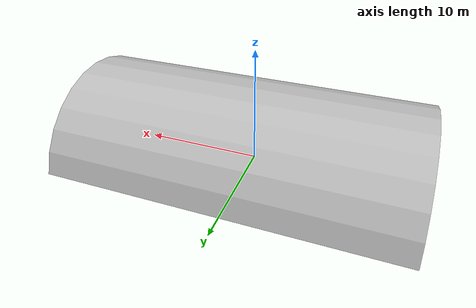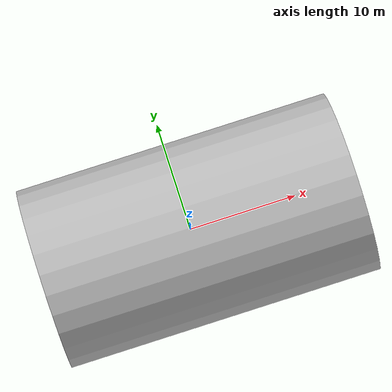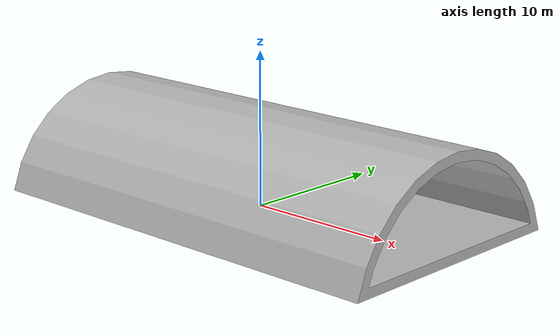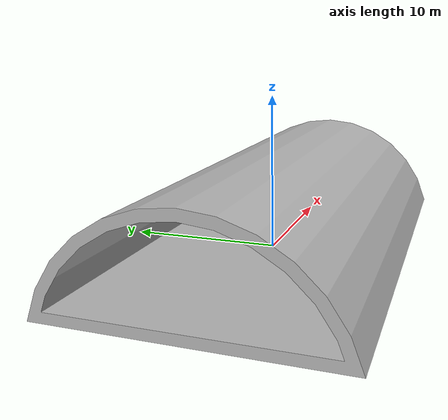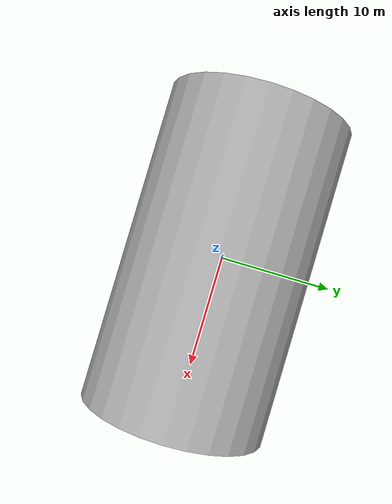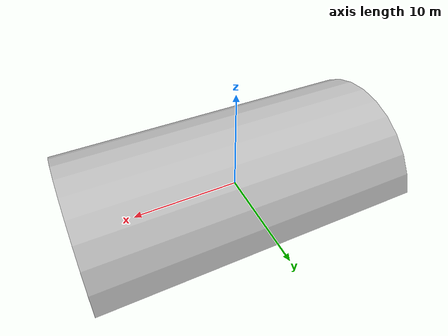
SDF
<?xml version="1.0" ?>
<sdf version="1.5">
  <model name="cpt_tunnel2">
    <static>true</static>
    <link name="link">
      <visual name="visual">
        <geometry>
          <mesh>
            <uri>model://cpt_tunnel2/meshes/cpt_tunnel2.dae</uri>
          </mesh>
        </geometry>
      </visual>
      <collision name="collision">
        <geometry>
          <mesh>
            <uri>model://cpt_tunnel2/meshes/cpt_tunnel2.dae</uri>
          </mesh>
        </geometry>
      </collision>
    </link>
  </model>
</sdf>
